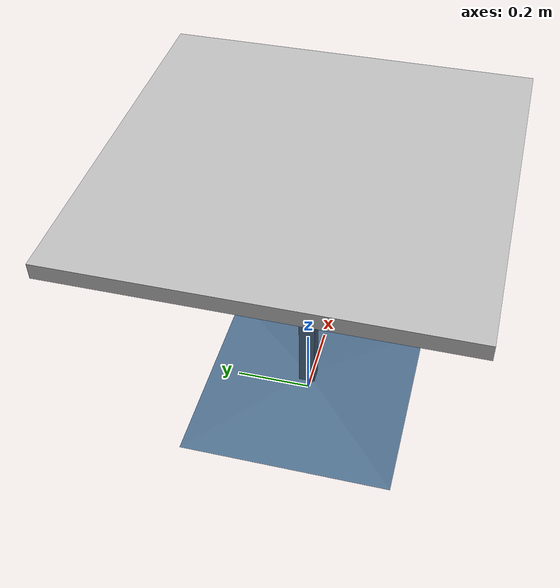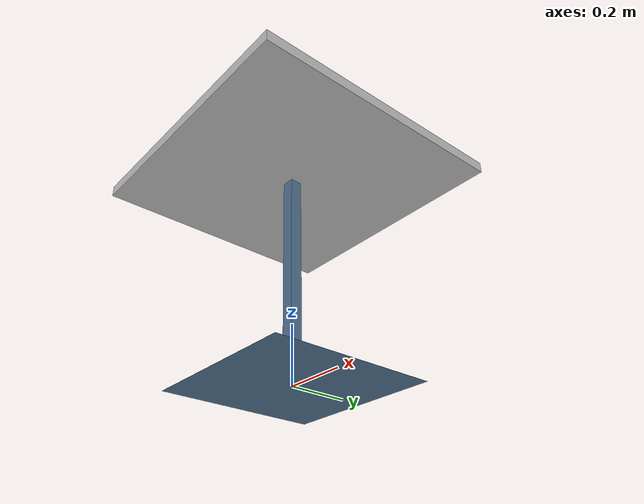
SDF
<?xml version="1.0" ?>
<sdf version="1.4">
  <model name="cafe_table">
    <static>true</static>
    <link name="link">
      <collision name="surface">
        <pose>0 0 0.755 0 0 0</pose>
        <geometry>
          <box>
            <size>0.913 0.913 0.04</size>
          </box>
        </geometry>
      </collision>

      <collision name="column">
        <pose>0 0 0.37 0 0 0</pose>
        <geometry>
          <box>
            <size>0.042 0.042 0.74</size>
          </box>
        </geometry>
      </collision>

      <collision name="base">
        <pose>0 0 0.02 0 0 0</pose>
        <geometry>
          <box>
            <size>0.56 0.56 0.04</size>
          </box>
        </geometry>

       <surface>
        <friction>
          <torsional>
            <coefficient>1.0</coefficient>
            <use_patch_radius>false</use_patch_radius>
            <surface_radius>0.05</surface_radius>
          </torsional>
        </friction>
      </surface>
      </collision>

      <visual name="visual">
        <geometry>
          <mesh>
            <uri>model://reactorx200_description/models/table/meshes/cafe_table.dae</uri>
          </mesh>
        </geometry>
      </visual>
    </link>
  </model>
</sdf>
